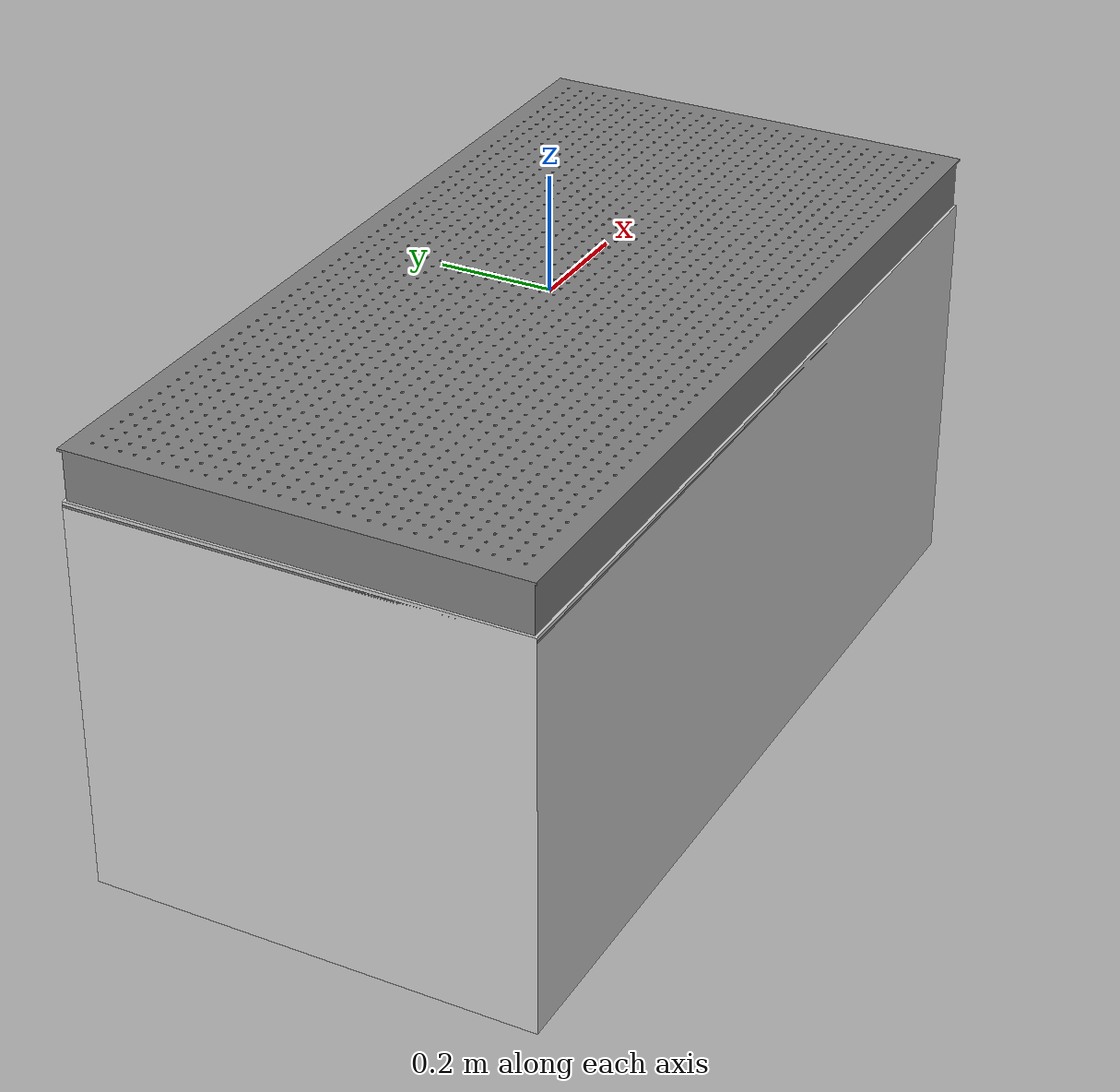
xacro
<?xml version="1.0" ?>
<robot name="table_environment" xmlns:xacro="http://ros.org/wiki/xacro">
	<xacro:property name="Table_Height" value="0.798"/>
	<xacro:property name="Plate_Height" value="0.708"/>
  <!-- table -->
  <link name="table_link">
    <visual>
      <origin xyz="0 0 0" rpy="0 0 ${pi/2.0}"/>
      <geometry>
        <mesh filename="package://honeycomb_and_plate_description/meshes/honeycomb_table_simplified.dae"/>
      </geometry>
      <material name="table_link_material">
          <color rgba="0.5 0.5 0.5 1"/>
      </material>
    </visual>
    <collision>
      <origin xyz="0.0 0.0 -0.05" rpy="0.0 0.0 0.0"/>
      <geometry>
        <box size="1.6 0.8 0.1"/>
      </geometry>
      <origin rpy="0 0 0" xyz="0 0 0"/>
    </collision>
  </link>

  <!-- plate -->
  <link name="plate_link">
    <visual>
      <origin xyz="0 0 ${Plate_Height/2}" rpy="0 0 0"/>
      <geometry>
        <box size="1.6 0.8 ${Plate_Height}"/>
      </geometry>
      <material name="plate_link">
        <color rgba="0.8 0.8 0.8 1"/>
      </material>
    </visual>
  </link>

  <joint name="plate_joint" type="fixed">
    <parent link="table_link"/>
    <child link="plate_link"/>
    <origin xyz="0 0 -${Table_Height}" rpy="0 0 0"/>
	</joint>

</robot>
